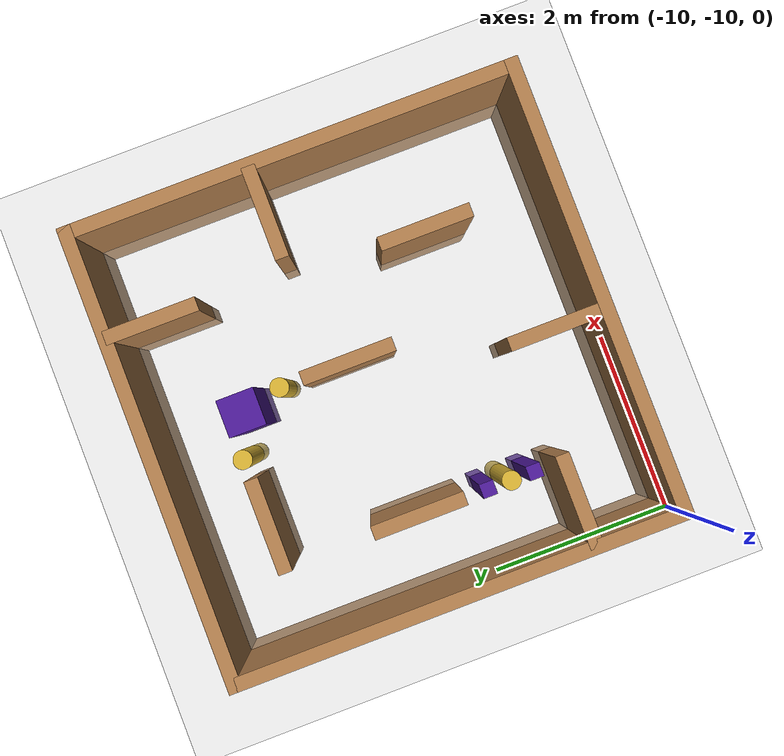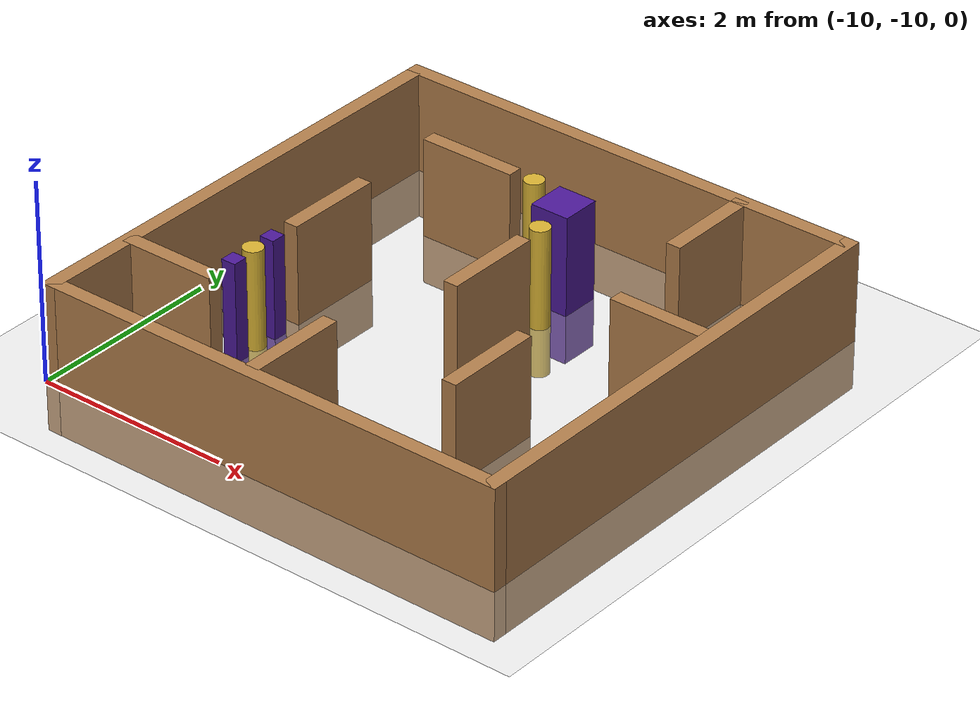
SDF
<sdf version="1.4">
 <world name="default">
  <include><uri>model://ground_plane</uri></include>
  <include><uri>model://sun</uri></include>
  <include><uri>model://my_plaza</uri><name>my_plaza</name><pose>-7.5 -7.5 0 0 0 0</pose></include>
 </world>
</sdf>

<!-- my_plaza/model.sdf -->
<sdf version='1.6'>
  <model name='my_plaza'>
    <pose frame=''>0 0 0 0 -0 0</pose>
    <link name='Wall_0'>
      <collision name='Wall_0_Collision'>
        <geometry>
          <box>
            <size>5 0.15 1.5</size>
          </box>
        </geometry>
        <pose frame=''>0 0 0.25 0 -0 0</pose>
      </collision>
      <visual name='Wall_0_Visual'>
        <pose frame=''>0 0 0.25 0 -0 0</pose>
        <geometry>
          <box>
            <size>5 0.15 1.5</size>
          </box>
        </geometry>
        <material>
          <script>
            <uri>file://media/materials/scripts/gazebo.material</uri>
            <name>Gazebo/Wood</name>
          </script>
          <ambient>1 1 1 1</ambient>
        </material>
      </visual>
      <pose frame=''>-2.425 0 0 0 -0 1.5708</pose>
    </link>
    <link name='Wall_11'>
      <collision name='Wall_11_Collision'>
        <geometry>
          <box>
            <size>1 0.15 1.5</size>
          </box>
        </geometry>
        <pose frame=''>0 0 0.25 0 -0 0</pose>
      </collision>
      <visual name='Wall_11_Visual'>
        <pose frame=''>0 0 0.25 0 -0 0</pose>
        <geometry>
          <box>
            <size>1 0.15 1.5</size>
          </box>
        </geometry>
        <material>
          <script>
            <uri>file://media/materials/scripts/gazebo.material</uri>
            <name>Gazebo/Wood</name>
          </script>
          <ambient>1 1 1 1</ambient>
        </material>
      </visual>
      <pose frame=''>-1.937 -1.467 0 0 -0 0</pose>
    </link>
    <link name='Wall_13'>
      <collision name='Wall_13_Collision'>
        <geometry>
          <box>
            <size>1 0.15 1.5</size>
          </box>
        </geometry>
        <pose frame=''>0 0 0.25 0 -0 0</pose>
      </collision>
      <visual name='Wall_13_Visual'>
        <pose frame=''>0 0 0.25 0 -0 0</pose>
        <geometry>
          <box>
            <size>1 0.15 1.5</size>
          </box>
        </geometry>
        <material>
          <script>
            <uri>file://media/materials/scripts/gazebo.material</uri>
            <name>Gazebo/Wood</name>
          </script>
          <ambient>1 1 1 1</ambient>
        </material>
      </visual>
      <pose frame=''>-0.22 -1.866 0 0 0 -1.5708</pose>
    </link>
    <link name='Wall_15'>
      <collision name='Wall_15_Collision'>
        <geometry>
          <box>
            <size>1 0.15 1.5</size>
          </box>
        </geometry>
        <pose frame=''>0 0 0.25 0 -0 0</pose>
      </collision>
      <visual name='Wall_15_Visual'>
        <pose frame=''>0 0 0.25 0 -0 0</pose>
        <geometry>
          <box>
            <size>1 0.15 1.5</size>
          </box>
        </geometry>
        <material>
          <script>
            <uri>file://media/materials/scripts/gazebo.material</uri>
            <name>Gazebo/Wood</name>
          </script>
          <ambient>1 1 1 1</ambient>
        </material>
      </visual>
      <pose frame=''>1.195 -1.002 0 0 -0 1.5708</pose>
    </link>
    <link name='Wall_17'>
      <collision name='Wall_17_Collision'>
        <geometry>
          <box>
            <size>1 0.15 1.5</size>
          </box>
        </geometry>
        <pose frame=''>0 0 0.25 0 -0 0</pose>
      </collision>
      <visual name='Wall_17_Visual'>
        <pose frame=''>0 0 0.25 0 -0 0</pose>
        <geometry>
          <box>
            <size>1 0.15 1.5</size>
          </box>
        </geometry>
        <material>
          <script>
            <uri>file://media/materials/scripts/gazebo.material</uri>
            <name>Gazebo/Wood</name>
          </script>
          <ambient>1 1 1 1</ambient>
        </material>
      </visual>
      <pose frame=''>1.288 1.93 0 0 0 -1.5708</pose>
    </link>
    <link name='Wall_19'>
      <collision name='Wall_19_Collision'>
        <geometry>
          <box>
            <size>1 0.15 1.5</size>
          </box>
        </geometry>
        <pose frame=''>0 0 0.25 0 -0 0</pose>
      </collision>
      <visual name='Wall_19_Visual'>
        <pose frame=''>0 0 0.25 0 -0 0</pose>
        <geometry>
          <box>
            <size>1 0.15 1.5</size>
          </box>
        </geometry>
        <material>
          <script>
            <uri>file://media/materials/scripts/gazebo.material</uri>
            <name>Gazebo/Wood</name>
          </script>
          <ambient>1 1 1 1</ambient>
        </material>
      </visual>
      <pose frame=''>1.91128 0.4632 0 0 -0 0</pose>
    </link>
    <link name='Wall_2'>
      <collision name='Wall_2_Collision'>
        <geometry>
          <box>
            <size>5 0.15 1.5</size>
          </box>
        </geometry>
        <pose frame=''>0 0 0.25 0 -0 0</pose>
      </collision>
      <visual name='Wall_2_Visual'>
        <pose frame=''>0 0 0.25 0 -0 0</pose>
        <geometry>
          <box>
            <size>5 0.15 1.5</size>
          </box>
        </geometry>
        <material>
          <script>
            <uri>file://media/materials/scripts/gazebo.material</uri>
            <name>Gazebo/Wood</name>
          </script>
          <ambient>1 1 1 1</ambient>
        </material>
      </visual>
      <pose frame=''>0 2.425 0 0 -0 0</pose>
    </link>
    <link name='Wall_21'>
      <collision name='Wall_21_Collision'>
        <geometry>
          <box>
            <size>1 0.15 1.5</size>
          </box>
        </geometry>
        <pose frame=''>0 0 0.25 0 -0 0</pose>
      </collision>
      <visual name='Wall_21_Visual'>
        <pose frame=''>0 0 0.25 0 -0 0</pose>
        <geometry>
          <box>
            <size>1 0.15 1.5</size>
          </box>
        </geometry>
        <material>
          <script>
            <uri>file://media/materials/scripts/gazebo.material</uri>
            <name>Gazebo/Wood</name>
          </script>
          <ambient>1 1 1 1</ambient>
        </material>
      </visual>
      <pose frame=''>0.204 0.215 0 0 0 -1.5708</pose>
    </link>
    <link name='Wall_3'>
      <collision name='Wall_3_Collision'>
        <geometry>
          <box>
            <size>5 0.15 1.5</size>
          </box>
        </geometry>
        <pose frame=''>0 0 0.25 0 -0 0</pose>
      </collision>
      <visual name='Wall_3_Visual'>
        <pose frame=''>0 0 0.25 0 -0 0</pose>
        <geometry>
          <box>
            <size>5 0.15 1.5</size>
          </box>
        </geometry>
        <material>
          <script>
            <uri>file://media/materials/scripts/gazebo.material</uri>
            <name>Gazebo/Wood</name>
          </script>
          <ambient>1 1 1 1</ambient>
        </material>
      </visual>
      <pose frame=''>2.425 0 0 0 0 -1.5708</pose>
    </link>
    <link name='Wall_4'>
      <collision name='Wall_4_Collision'>
        <geometry>
          <box>
            <size>5 0.15 1.5</size>
          </box>
        </geometry>
        <pose frame=''>0 0 0.25 0 -0 0</pose>
      </collision>
      <visual name='Wall_4_Visual'>
        <pose frame=''>0 0 0.25 0 -0 0</pose>
        <geometry>
          <box>
            <size>5 0.15 1.5</size>
          </box>
        </geometry>
        <material>
          <script>
            <uri>file://media/materials/scripts/gazebo.material</uri>
            <name>Gazebo/Wood</name>
          </script>
          <ambient>1 1 1 1</ambient>
        </material>
      </visual>
      <pose frame=''>0 -2.425 0 0 -0 3.14159</pose>
    </link>
    <link name='Wall_7'>
      <collision name='Wall_7_Collision'>
        <geometry>
          <box>
            <size>1 0.15 1.5</size>
          </box>
        </geometry>
        <pose frame=''>0 0 0.25 0 -0 0</pose>
      </collision>
      <visual name='Wall_7_Visual'>
        <pose frame=''>0 0 0.25 0 -0 0</pose>
        <geometry>
          <box>
            <size>1 0.15 1.5</size>
          </box>
        </geometry>
        <material>
          <script>
            <uri>file://media/materials/scripts/gazebo.material</uri>
            <name>Gazebo/Wood</name>
          </script>
          <ambient>1 1 1 1</ambient>
        </material>
      </visual>
      <pose frame=''>-1.064 1.548 0 0 -0 0</pose>
    </link>
    <link name='Wall_9'>
      <collision name='Wall_9_Collision'>
        <geometry>
          <box>
            <size>1 0.15 1.5</size>
          </box>
        </geometry>
        <pose frame=''>0 0 0.25 0 -0 0</pose>
      </collision>
      <visual name='Wall_9_Visual'>
        <pose frame=''>0 0 0.25 0 -0 0</pose>
        <geometry>
          <box>
            <size>1 0.15 1.5</size>
          </box>
        </geometry>
        <material>
          <script>
            <uri>file://media/materials/scripts/gazebo.material</uri>
            <name>Gazebo/Wood</name>
          </script>
          <ambient>1 1 1 1</ambient>
        </material>
      </visual>
      <pose frame=''>-1.502 0.092 0 0 0 -1.5708</pose>
    </link>

    <link name='right_parallelogram_1'>
      <collision name='right_parallelogram_1_Collision'>
        <geometry>
          <box>
            <size>0.4 0.4 1.5</size>
          </box>
        </geometry>
        <pose frame=''>0.1 1.4 0.25 0 0 0</pose>
      </collision>
      <visual name='right_parallelogram_1_Visual'>
        <pose frame=''>0 0 0 0 0 0</pose>
        <geometry>
          <box>
            <size>0.4 0.4 1.5</size>
          </box>
        </geometry>
        <material>
          <script>
            <uri>file://media/materials/scripts/gazebo.material</uri>
            <name>Gazebo/Indigo</name>
          </script>
          <ambient>1 1 1 1</ambient>
        </material>
      </visual>
      <pose frame=''>0.1 1.4 0.25 0 0 0</pose>
    </link>

    <link name='right_parallelogram_2'>
      <collision name='right_parallelogram_2_Collision'>
        <geometry>
          <box>
            <size>0.15 0.15 1.5</size>
          </box>
        </geometry>
        <pose frame=''>-1.5 -0.65 0.25 0 0 0</pose>
      </collision>
      <visual name='right_parallelogram_2_Visual'>
        <pose frame=''>0 0 0 0 0 0</pose>
        <geometry>
          <box>
            <size>0.15 0.15 1.5</size>
          </box>
        </geometry>
        <material>
          <script>
            <uri>file://media/materials/scripts/gazebo.material</uri>
            <name>Gazebo/Indigo</name>
          </script>
          <ambient>1 1 1 1</ambient>
        </material>
      </visual>
      <pose frame=''>-1.5 -0.65 0.25 0 0 0</pose>
    </link>

    <link name='right_parallelogram_3'>
      <collision name='right_parallelogram_3_Collision'>
        <geometry>
          <box>
            <size>0.15 0.15 1.5</size>
          </box>
        </geometry>
        <pose frame=''>-1.5 -1.15 0.25 0 0 0</pose>
      </collision>
      <visual name='right_parallelogram_3_Visual'>
        <pose frame=''>0 0 0 0 0 0</pose>
        <geometry>
          <box>
            <size>0.15 0.15 1.5</size>
          </box>
        </geometry>
        <material>
          <script>
            <uri>file://media/materials/scripts/gazebo.material</uri>
            <name>Gazebo/Indigo</name>
          </script>
          <ambient>1 1 1 1</ambient>
        </material>
      </visual>
      <pose frame=''>-1.5 -1.15 0.25 0 0 0</pose>
    </link>

    <link name='cylinder_1'>
      <collision name='cylinder_1_Collision'>
        <geometry>
          <cylinder>
            <radius>0.1</radius>
            <length>1.5</length>
          </cylinder>
        </geometry>
        <pose frame=''>0.2 0.95 0.25 0 0 0</pose>
      </collision>
      <visual name='cylinder_1_Visual'>
        <pose frame=''>0 0 0 0 0 0</pose>
        <geometry>
          <cylinder>
            <radius>0.1</radius>
            <length>1.5</length>
          </cylinder>
        </geometry>
        <material>
          <script>
            <uri>file://media/materials/scripts/gazebo.material</uri>
            <name>Gazebo/Gold</name>
          </script>
          <ambient>1 1 1 1</ambient>
        </material>
      </visual>
      <pose frame=''>0.2 0.95 0.25 0 0 0</pose>
    </link>

    <link name='cylinder_2'>
      <collision name='cylinder_2_Collision'>
        <geometry>
          <cylinder>
            <radius>0.1</radius>
            <length>1.5</length>
          </cylinder>
        </geometry>
        <pose frame=''>-0.35 1.55 0.25 0 0 0</pose>
      </collision>
      <visual name='cylinder_2_Visual'>
        <pose frame=''>0 0 0 0 0 0</pose>
        <geometry>
          <cylinder>
            <radius>0.1</radius>
            <length>1.5</length>
          </cylinder>
        </geometry>
        <material>
          <script>
            <uri>file://media/materials/scripts/gazebo.material</uri>
            <name>Gazebo/Gold</name>
          </script>
          <ambient>1 1 1 1</ambient>
        </material>
      </visual>
      <pose frame=''>-0.35 1.55 0.25 0 0 0</pose>
    </link>
       <link name='cylinder_3'>
      <collision name='cylinder_3_Collision'>
        <geometry>
          <cylinder>
            <radius>0.1</radius>
            <length>1.5</length>
          </cylinder>
        </geometry>
        <pose frame=''>-1.5 -0.9 0.25 0 0 0</pose>
      </collision>
      <visual name='cylinder_3_Visual'>
        <pose frame=''>0 0 0 0 0 0</pose>
        <geometry>
          <cylinder>
            <radius>0.1</radius>
            <length>1.5</length>
          </cylinder>
        </geometry>
        <material>
          <script>
            <uri>file://media/materials/scripts/gazebo.material</uri>
            <name>Gazebo/Gold</name>
          </script>
          <ambient>1 1 1 1</ambient>
        </material>
      </visual>
      <pose frame=''>-1.5 -0.9 0.25 0 0 0</pose>
    </link>
    <static>1</static>
  </model>
</sdf>
